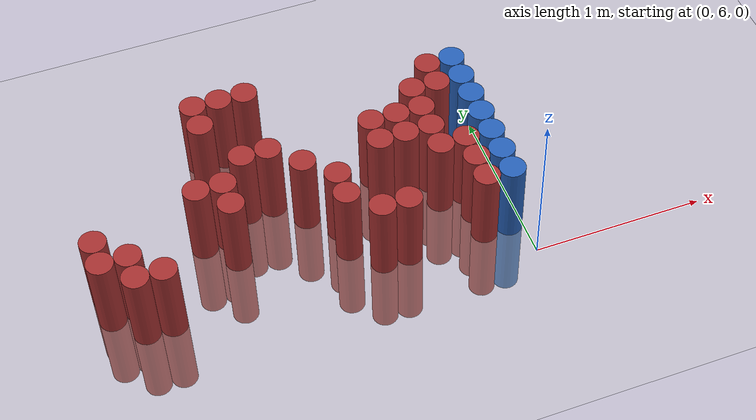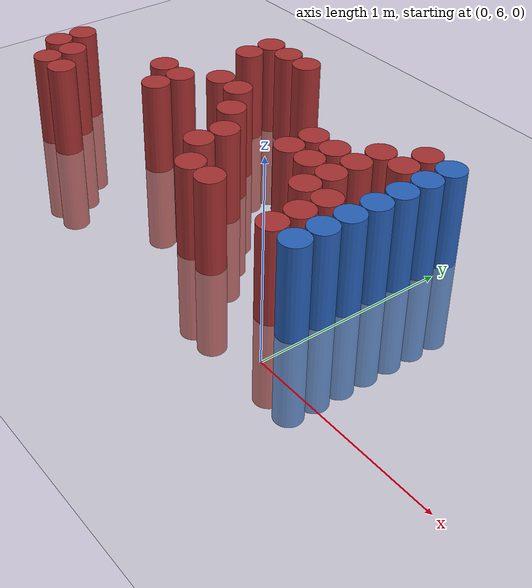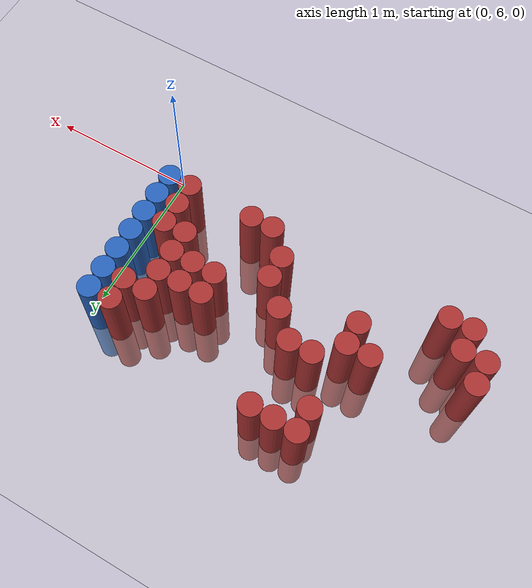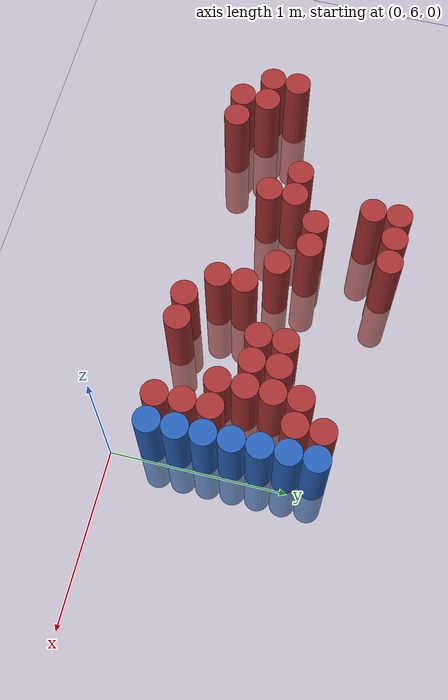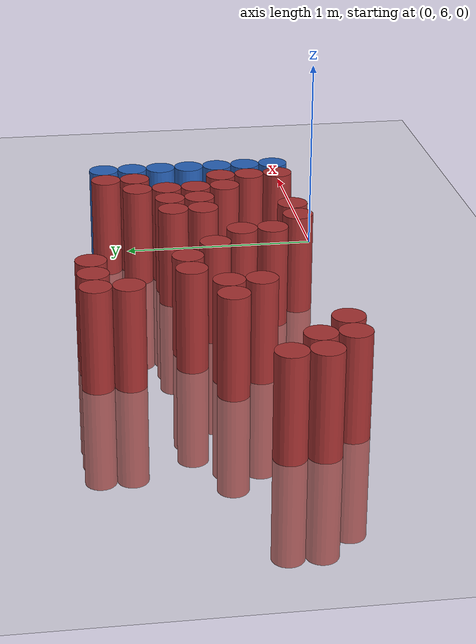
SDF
<sdf version="1.6">
 <world name="default">
  <model name="ground_plane">
   <static>1</static>
   <link name="link">
    <collision name="collision">
     <geometry><plane><normal>0 0 1</normal><size>100 100</size></plane></geometry>
     <surface><friction><ode><mu>100</mu><mu2>50</mu2></ode></friction></surface>
    </collision>
    <visual name="visual">
     <cast_shadows>0</cast_shadows>
     <geometry><plane><normal>0 0 1</normal><size>100 100</size></plane></geometry>
     <material>
      <script><uri>file://media/materials/scripts/gazebo.material</uri><name>Gazebo/Grey</name></script>
     </material>
    </visual>
   </link>
  </model>
  <model name="unit_cylinder_204">
   <static>1</static>
   <pose>-2.325000 6.375000 0.000000 0.000000 0.000000 0.000000</pose>
   <link name="link">
    <inertial>
     <mass>1</mass>
     <inertia><ixx>0.145833</ixx><ixy>0</ixy><ixz>0</ixz><iyy>0.145833</iyy><iyz>0</iyz><izz>0.125</izz></inertia>
    </inertial>
    <collision name="collision">
     <geometry><cylinder><radius>0.075000</radius><length>1</length></cylinder></geometry>
    </collision>
    <visual name="visual">
     <geometry><cylinder><radius>0.075000</radius><length>1</length></cylinder></geometry>
     <material>
      <ambient>0.648000 0.192000 0.192000 1</ambient>
      <diffuse>0.648000 0.192000 0.192000 1</diffuse>
     </material>
     <material>
      <script><name>Gazebo/Grey</name><uri>file://media/materials/scripts/gazebo.material</uri></script>
     </material>
    </visual>
    <sensor name="sensor_contact" type="contact"><contact><collision>collision</collision></contact></sensor>
   </link>
   <plugin filename="gz-sim-touchplugin-system" name="gz::sim::systems::TouchPlugin">
    <target>robot</target>
    <namespace>robot</namespace>
    <time>0.001</time>
    <enabled>true</enabled>
   </plugin>
  </model>
  <model name="unit_cylinder_205">
   <static>1</static>
   <pose>-2.325000 6.525000 0.000000 0.000000 0.000000 0.000000</pose>
   <link name="link">
    <inertial>
     <mass>1</mass>
     <inertia><ixx>0.145833</ixx><ixy>0</ixy><ixz>0</ixz><iyy>0.145833</iyy><iyz>0</iyz><izz>0.125</izz></inertia>
    </inertial>
    <collision name="collision">
     <geometry><cylinder><radius>0.075000</radius><length>1</length></cylinder></geometry>
    </collision>
    <visual name="visual">
     <geometry><cylinder><radius>0.075000</radius><length>1</length></cylinder></geometry>
     <material>
      <ambient>0.648000 0.192000 0.192000 1</ambient>
      <diffuse>0.648000 0.192000 0.192000 1</diffuse>
     </material>
     <material>
      <script><name>Gazebo/Grey</name><uri>file://media/materials/scripts/gazebo.material</uri></script>
     </material>
    </visual>
    <sensor name="sensor_contact" type="contact"><contact><collision>collision</collision></contact></sensor>
   </link>
   <plugin filename="gz-sim-touchplugin-system" name="gz::sim::systems::TouchPlugin">
    <target>robot</target>
    <namespace>robot</namespace>
    <time>0.001</time>
    <enabled>true</enabled>
   </plugin>
  </model>
  <model name="unit_cylinder_207">
   <static>1</static>
   <pose>-2.175000 6.225000 0.000000 0.000000 0.000000 0.000000</pose>
   <link name="link">
    <inertial>
     <mass>1</mass>
     <inertia><ixx>0.145833</ixx><ixy>0</ixy><ixz>0</ixz><iyy>0.145833</iyy><iyz>0</iyz><izz>0.125</izz></inertia>
    </inertial>
    <collision name="collision">
     <geometry><cylinder><radius>0.075000</radius><length>1</length></cylinder></geometry>
    </collision>
    <visual name="visual">
     <geometry><cylinder><radius>0.075000</radius><length>1</length></cylinder></geometry>
     <material>
      <ambient>0.648000 0.192000 0.192000 1</ambient>
      <diffuse>0.648000 0.192000 0.192000 1</diffuse>
     </material>
     <material>
      <script><name>Gazebo/Grey</name><uri>file://media/materials/scripts/gazebo.material</uri></script>
     </material>
    </visual>
    <sensor name="sensor_contact" type="contact"><contact><collision>collision</collision></contact></sensor>
   </link>
   <plugin filename="gz-sim-touchplugin-system" name="gz::sim::systems::TouchPlugin">
    <target>robot</target>
    <namespace>robot</namespace>
    <time>0.001</time>
    <enabled>true</enabled>
   </plugin>
  </model>
  <model name="unit_cylinder_208">
   <static>1</static>
   <pose>-2.175000 6.375000 0.000000 0.000000 0.000000 0.000000</pose>
   <link name="link">
    <inertial>
     <mass>1</mass>
     <inertia><ixx>0.145833</ixx><ixy>0</ixy><ixz>0</ixz><iyy>0.145833</iyy><iyz>0</iyz><izz>0.125</izz></inertia>
    </inertial>
    <collision name="collision">
     <geometry><cylinder><radius>0.075000</radius><length>1</length></cylinder></geometry>
    </collision>
    <visual name="visual">
     <geometry><cylinder><radius>0.075000</radius><length>1</length></cylinder></geometry>
     <material>
      <ambient>0.648000 0.192000 0.192000 1</ambient>
      <diffuse>0.648000 0.192000 0.192000 1</diffuse>
     </material>
     <material>
      <script><name>Gazebo/Grey</name><uri>file://media/materials/scripts/gazebo.material</uri></script>
     </material>
    </visual>
    <sensor name="sensor_contact" type="contact"><contact><collision>collision</collision></contact></sensor>
   </link>
   <plugin filename="gz-sim-touchplugin-system" name="gz::sim::systems::TouchPlugin">
    <target>robot</target>
    <namespace>robot</namespace>
    <time>0.001</time>
    <enabled>true</enabled>
   </plugin>
  </model>
  <model name="unit_cylinder_210">
   <static>1</static>
   <pose>-2.025000 6.225000 0.000000 0.000000 0.000000 0.000000</pose>
   <link name="link">
    <inertial>
     <mass>1</mass>
     <inertia><ixx>0.145833</ixx><ixy>0</ixy><ixz>0</ixz><iyy>0.145833</iyy><iyz>0</iyz><izz>0.125</izz></inertia>
    </inertial>
    <collision name="collision">
     <geometry><cylinder><radius>0.075000</radius><length>1</length></cylinder></geometry>
    </collision>
    <visual name="visual">
     <geometry><cylinder><radius>0.075000</radius><length>1</length></cylinder></geometry>
     <material>
      <ambient>0.648000 0.192000 0.192000 1</ambient>
      <diffuse>0.648000 0.192000 0.192000 1</diffuse>
     </material>
     <material>
      <script><name>Gazebo/Grey</name><uri>file://media/materials/scripts/gazebo.material</uri></script>
     </material>
    </visual>
    <sensor name="sensor_contact" type="contact"><contact><collision>collision</collision></contact></sensor>
   </link>
   <plugin filename="gz-sim-touchplugin-system" name="gz::sim::systems::TouchPlugin">
    <target>robot</target>
    <namespace>robot</namespace>
    <time>0.001</time>
    <enabled>true</enabled>
   </plugin>
  </model>
  <model name="unit_cylinder_216">
   <static>1</static>
   <pose>-1.725000 6.675000 0.000000 0.000000 0.000000 0.000000</pose>
   <link name="link">
    <inertial>
     <mass>1</mass>
     <inertia><ixx>0.145833</ixx><ixy>0</ixy><ixz>0</ixz><iyy>0.145833</iyy><iyz>0</iyz><izz>0.125</izz></inertia>
    </inertial>
    <collision name="collision">
     <geometry><cylinder><radius>0.075000</radius><length>1</length></cylinder></geometry>
    </collision>
    <visual name="visual">
     <geometry><cylinder><radius>0.075000</radius><length>1</length></cylinder></geometry>
     <material>
      <ambient>0.648000 0.192000 0.192000 1</ambient>
      <diffuse>0.648000 0.192000 0.192000 1</diffuse>
     </material>
     <material>
      <script><name>Gazebo/Grey</name><uri>file://media/materials/scripts/gazebo.material</uri></script>
     </material>
    </visual>
    <sensor name="sensor_contact" type="contact"><contact><collision>collision</collision></contact></sensor>
   </link>
   <plugin filename="gz-sim-touchplugin-system" name="gz::sim::systems::TouchPlugin">
    <target>robot</target>
    <namespace>robot</namespace>
    <time>0.001</time>
    <enabled>true</enabled>
   </plugin>
  </model>
  <model name="unit_cylinder_221">
   <static>1</static>
   <pose>-1.575000 6.525000 0.000000 0.000000 0.000000 0.000000</pose>
   <link name="link">
    <inertial>
     <mass>1</mass>
     <inertia><ixx>0.145833</ixx><ixy>0</ixy><ixz>0</ixz><iyy>0.145833</iyy><iyz>0</iyz><izz>0.125</izz></inertia>
    </inertial>
    <collision name="collision">
     <geometry><cylinder><radius>0.075000</radius><length>1</length></cylinder></geometry>
    </collision>
    <visual name="visual">
     <geometry><cylinder><radius>0.075000</radius><length>1</length></cylinder></geometry>
     <material>
      <ambient>0.648000 0.192000 0.192000 1</ambient>
      <diffuse>0.648000 0.192000 0.192000 1</diffuse>
     </material>
     <material>
      <script><name>Gazebo/Grey</name><uri>file://media/materials/scripts/gazebo.material</uri></script>
     </material>
    </visual>
    <sensor name="sensor_contact" type="contact"><contact><collision>collision</collision></contact></sensor>
   </link>
   <plugin filename="gz-sim-touchplugin-system" name="gz::sim::systems::TouchPlugin">
    <target>robot</target>
    <namespace>robot</namespace>
    <time>0.001</time>
    <enabled>true</enabled>
   </plugin>
  </model>
  <model name="unit_cylinder_222">
   <static>1</static>
   <pose>-1.575000 6.675000 0.000000 0.000000 0.000000 0.000000</pose>
   <link name="link">
    <inertial>
     <mass>1</mass>
     <inertia><ixx>0.145833</ixx><ixy>0</ixy><ixz>0</ixz><iyy>0.145833</iyy><iyz>0</iyz><izz>0.125</izz></inertia>
    </inertial>
    <collision name="collision">
     <geometry><cylinder><radius>0.075000</radius><length>1</length></cylinder></geometry>
    </collision>
    <visual name="visual">
     <geometry><cylinder><radius>0.075000</radius><length>1</length></cylinder></geometry>
     <material>
      <ambient>0.648000 0.192000 0.192000 1</ambient>
      <diffuse>0.648000 0.192000 0.192000 1</diffuse>
     </material>
     <material>
      <script><name>Gazebo/Grey</name><uri>file://media/materials/scripts/gazebo.material</uri></script>
     </material>
    </visual>
    <sensor name="sensor_contact" type="contact"><contact><collision>collision</collision></contact></sensor>
   </link>
   <plugin filename="gz-sim-touchplugin-system" name="gz::sim::systems::TouchPlugin">
    <target>robot</target>
    <namespace>robot</namespace>
    <time>0.001</time>
    <enabled>true</enabled>
   </plugin>
  </model>
  <model name="unit_cylinder_223">
   <static>1</static>
   <pose>-1.575000 7.125000 0.000000 0.000000 0.000000 0.000000</pose>
   <link name="link">
    <inertial>
     <mass>1</mass>
     <inertia><ixx>0.145833</ixx><ixy>0</ixy><ixz>0</ixz><iyy>0.145833</iyy><iyz>0</iyz><izz>0.125</izz></inertia>
    </inertial>
    <collision name="collision">
     <geometry><cylinder><radius>0.075000</radius><length>1</length></cylinder></geometry>
    </collision>
    <visual name="visual">
     <geometry><cylinder><radius>0.075000</radius><length>1</length></cylinder></geometry>
     <material>
      <ambient>0.648000 0.192000 0.192000 1</ambient>
      <diffuse>0.648000 0.192000 0.192000 1</diffuse>
     </material>
     <material>
      <script><name>Gazebo/Grey</name><uri>file://media/materials/scripts/gazebo.material</uri></script>
     </material>
    </visual>
    <sensor name="sensor_contact" type="contact"><contact><collision>collision</collision></contact></sensor>
   </link>
   <plugin filename="gz-sim-touchplugin-system" name="gz::sim::systems::TouchPlugin">
    <target>robot</target>
    <namespace>robot</namespace>
    <time>0.001</time>
    <enabled>true</enabled>
   </plugin>
  </model>
  <model name="unit_cylinder_224">
   <static>1</static>
   <pose>-1.575000 7.275000 0.000000 0.000000 0.000000 0.000000</pose>
   <link name="link">
    <inertial>
     <mass>1</mass>
     <inertia><ixx>0.145833</ixx><ixy>0</ixy><ixz>0</ixz><iyy>0.145833</iyy><iyz>0</iyz><izz>0.125</izz></inertia>
    </inertial>
    <collision name="collision">
     <geometry><cylinder><radius>0.075000</radius><length>1</length></cylinder></geometry>
    </collision>
    <visual name="visual">
     <geometry><cylinder><radius>0.075000</radius><length>1</length></cylinder></geometry>
     <material>
      <ambient>0.648000 0.192000 0.192000 1</ambient>
      <diffuse>0.648000 0.192000 0.192000 1</diffuse>
     </material>
     <material>
      <script><name>Gazebo/Grey</name><uri>file://media/materials/scripts/gazebo.material</uri></script>
     </material>
    </visual>
    <sensor name="sensor_contact" type="contact"><contact><collision>collision</collision></contact></sensor>
   </link>
   <plugin filename="gz-sim-touchplugin-system" name="gz::sim::systems::TouchPlugin">
    <target>robot</target>
    <namespace>robot</namespace>
    <time>0.001</time>
    <enabled>true</enabled>
   </plugin>
  </model>
  <model name="unit_cylinder_232">
   <static>1</static>
   <pose>-1.425000 6.825000 0.000000 0.000000 0.000000 0.000000</pose>
   <link name="link">
    <inertial>
     <mass>1</mass>
     <inertia><ixx>0.145833</ixx><ixy>0</ixy><ixz>0</ixz><iyy>0.145833</iyy><iyz>0</iyz><izz>0.125</izz></inertia>
    </inertial>
    <collision name="collision">
     <geometry><cylinder><radius>0.075000</radius><length>1</length></cylinder></geometry>
    </collision>
    <visual name="visual">
     <geometry><cylinder><radius>0.075000</radius><length>1</length></cylinder></geometry>
     <material>
      <ambient>0.648000 0.192000 0.192000 1</ambient>
      <diffuse>0.648000 0.192000 0.192000 1</diffuse>
     </material>
     <material>
      <script><name>Gazebo/Grey</name><uri>file://media/materials/scripts/gazebo.material</uri></script>
     </material>
    </visual>
    <sensor name="sensor_contact" type="contact"><contact><collision>collision</collision></contact></sensor>
   </link>
   <plugin filename="gz-sim-touchplugin-system" name="gz::sim::systems::TouchPlugin">
    <target>robot</target>
    <namespace>robot</namespace>
    <time>0.001</time>
    <enabled>true</enabled>
   </plugin>
  </model>
  <model name="unit_cylinder_233">
   <static>1</static>
   <pose>-1.425000 7.275000 0.000000 0.000000 0.000000 0.000000</pose>
   <link name="link">
    <inertial>
     <mass>1</mass>
     <inertia><ixx>0.145833</ixx><ixy>0</ixy><ixz>0</ixz><iyy>0.145833</iyy><iyz>0</iyz><izz>0.125</izz></inertia>
    </inertial>
    <collision name="collision">
     <geometry><cylinder><radius>0.075000</radius><length>1</length></cylinder></geometry>
    </collision>
    <visual name="visual">
     <geometry><cylinder><radius>0.075000</radius><length>1</length></cylinder></geometry>
     <material>
      <ambient>0.648000 0.192000 0.192000 1</ambient>
      <diffuse>0.648000 0.192000 0.192000 1</diffuse>
     </material>
     <material>
      <script><name>Gazebo/Grey</name><uri>file://media/materials/scripts/gazebo.material</uri></script>
     </material>
    </visual>
    <sensor name="sensor_contact" type="contact"><contact><collision>collision</collision></contact></sensor>
   </link>
   <plugin filename="gz-sim-touchplugin-system" name="gz::sim::systems::TouchPlugin">
    <target>robot</target>
    <namespace>robot</namespace>
    <time>0.001</time>
    <enabled>true</enabled>
   </plugin>
  </model>
  <model name="unit_cylinder_239">
   <static>1</static>
   <pose>-1.275000 6.825000 0.000000 0.000000 0.000000 0.000000</pose>
   <link name="link">
    <inertial>
     <mass>1</mass>
     <inertia><ixx>0.145833</ixx><ixy>0</ixy><ixz>0</ixz><iyy>0.145833</iyy><iyz>0</iyz><izz>0.125</izz></inertia>
    </inertial>
    <collision name="collision">
     <geometry><cylinder><radius>0.075000</radius><length>1</length></cylinder></geometry>
    </collision>
    <visual name="visual">
     <geometry><cylinder><radius>0.075000</radius><length>1</length></cylinder></geometry>
     <material>
      <ambient>0.648000 0.192000 0.192000 1</ambient>
      <diffuse>0.648000 0.192000 0.192000 1</diffuse>
     </material>
     <material>
      <script><name>Gazebo/Grey</name><uri>file://media/materials/scripts/gazebo.material</uri></script>
     </material>
    </visual>
    <sensor name="sensor_contact" type="contact"><contact><collision>collision</collision></contact></sensor>
   </link>
   <plugin filename="gz-sim-touchplugin-system" name="gz::sim::systems::TouchPlugin">
    <target>robot</target>
    <namespace>robot</namespace>
    <time>0.001</time>
    <enabled>true</enabled>
   </plugin>
  </model>
  <model name="unit_cylinder_240">
   <static>1</static>
   <pose>-1.275000 7.275000 0.000000 0.000000 0.000000 0.000000</pose>
   <link name="link">
    <inertial>
     <mass>1</mass>
     <inertia><ixx>0.145833</ixx><ixy>0</ixy><ixz>0</ixz><iyy>0.145833</iyy><iyz>0</iyz><izz>0.125</izz></inertia>
    </inertial>
    <collision name="collision">
     <geometry><cylinder><radius>0.075000</radius><length>1</length></cylinder></geometry>
    </collision>
    <visual name="visual">
     <geometry><cylinder><radius>0.075000</radius><length>1</length></cylinder></geometry>
     <material>
      <ambient>0.648000 0.192000 0.192000 1</ambient>
      <diffuse>0.648000 0.192000 0.192000 1</diffuse>
     </material>
     <material>
      <script><name>Gazebo/Grey</name><uri>file://media/materials/scripts/gazebo.material</uri></script>
     </material>
    </visual>
    <sensor name="sensor_contact" type="contact"><contact><collision>collision</collision></contact></sensor>
   </link>
   <plugin filename="gz-sim-touchplugin-system" name="gz::sim::systems::TouchPlugin">
    <target>robot</target>
    <namespace>robot</namespace>
    <time>0.001</time>
    <enabled>true</enabled>
   </plugin>
  </model>
  <model name="unit_cylinder_248">
   <static>1</static>
   <pose>-1.125000 6.675000 0.000000 0.000000 0.000000 0.000000</pose>
   <link name="link">
    <inertial>
     <mass>1</mass>
     <inertia><ixx>0.145833</ixx><ixy>0</ixy><ixz>0</ixz><iyy>0.145833</iyy><iyz>0</iyz><izz>0.125</izz></inertia>
    </inertial>
    <collision name="collision">
     <geometry><cylinder><radius>0.075000</radius><length>1</length></cylinder></geometry>
    </collision>
    <visual name="visual">
     <geometry><cylinder><radius>0.075000</radius><length>1</length></cylinder></geometry>
     <material>
      <ambient>0.648000 0.192000 0.192000 1</ambient>
      <diffuse>0.648000 0.192000 0.192000 1</diffuse>
     </material>
     <material>
      <script><name>Gazebo/Grey</name><uri>file://media/materials/scripts/gazebo.material</uri></script>
     </material>
    </visual>
    <sensor name="sensor_contact" type="contact"><contact><collision>collision</collision></contact></sensor>
   </link>
   <plugin filename="gz-sim-touchplugin-system" name="gz::sim::systems::TouchPlugin">
    <target>robot</target>
    <namespace>robot</namespace>
    <time>0.001</time>
    <enabled>true</enabled>
   </plugin>
  </model>
  <model name="unit_cylinder_262">
   <static>1</static>
   <pose>-0.975000 6.375000 0.000000 0.000000 0.000000 0.000000</pose>
   <link name="link">
    <inertial>
     <mass>1</mass>
     <inertia><ixx>0.145833</ixx><ixy>0</ixy><ixz>0</ixz><iyy>0.145833</iyy><iyz>0</iyz><izz>0.125</izz></inertia>
    </inertial>
    <collision name="collision">
     <geometry><cylinder><radius>0.075000</radius><length>1</length></cylinder></geometry>
    </collision>
    <visual name="visual">
     <geometry><cylinder><radius>0.075000</radius><length>1</length></cylinder></geometry>
     <material>
      <ambient>0.648000 0.192000 0.192000 1</ambient>
      <diffuse>0.648000 0.192000 0.192000 1</diffuse>
     </material>
     <material>
      <script><name>Gazebo/Grey</name><uri>file://media/materials/scripts/gazebo.material</uri></script>
     </material>
    </visual>
    <sensor name="sensor_contact" type="contact"><contact><collision>collision</collision></contact></sensor>
   </link>
   <plugin filename="gz-sim-touchplugin-system" name="gz::sim::systems::TouchPlugin">
    <target>robot</target>
    <namespace>robot</namespace>
    <time>0.001</time>
    <enabled>true</enabled>
   </plugin>
  </model>
  <model name="unit_cylinder_263">
   <static>1</static>
   <pose>-0.975000 6.525000 0.000000 0.000000 0.000000 0.000000</pose>
   <link name="link">
    <inertial>
     <mass>1</mass>
     <inertia><ixx>0.145833</ixx><ixy>0</ixy><ixz>0</ixz><iyy>0.145833</iyy><iyz>0</iyz><izz>0.125</izz></inertia>
    </inertial>
    <collision name="collision">
     <geometry><cylinder><radius>0.075000</radius><length>1</length></cylinder></geometry>
    </collision>
    <visual name="visual">
     <geometry><cylinder><radius>0.075000</radius><length>1</length></cylinder></geometry>
     <material>
      <ambient>0.648000 0.192000 0.192000 1</ambient>
      <diffuse>0.648000 0.192000 0.192000 1</diffuse>
     </material>
     <material>
      <script><name>Gazebo/Grey</name><uri>file://media/materials/scripts/gazebo.material</uri></script>
     </material>
    </visual>
    <sensor name="sensor_contact" type="contact"><contact><collision>collision</collision></contact></sensor>
   </link>
   <plugin filename="gz-sim-touchplugin-system" name="gz::sim::systems::TouchPlugin">
    <target>robot</target>
    <namespace>robot</namespace>
    <time>0.001</time>
    <enabled>true</enabled>
   </plugin>
  </model>
  <model name="unit_cylinder_274">
   <static>1</static>
   <pose>-0.825000 6.225000 0.000000 0.000000 0.000000 0.000000</pose>
   <link name="link">
    <inertial>
     <mass>1</mass>
     <inertia><ixx>0.145833</ixx><ixy>0</ixy><ixz>0</ixz><iyy>0.145833</iyy><iyz>0</iyz><izz>0.125</izz></inertia>
    </inertial>
    <collision name="collision">
     <geometry><cylinder><radius>0.075000</radius><length>1</length></cylinder></geometry>
    </collision>
    <visual name="visual">
     <geometry><cylinder><radius>0.075000</radius><length>1</length></cylinder></geometry>
     <material>
      <ambient>0.648000 0.192000 0.192000 1</ambient>
      <diffuse>0.648000 0.192000 0.192000 1</diffuse>
     </material>
     <material>
      <script><name>Gazebo/Grey</name><uri>file://media/materials/scripts/gazebo.material</uri></script>
     </material>
    </visual>
    <sensor name="sensor_contact" type="contact"><contact><collision>collision</collision></contact></sensor>
   </link>
   <plugin filename="gz-sim-touchplugin-system" name="gz::sim::systems::TouchPlugin">
    <target>robot</target>
    <namespace>robot</namespace>
    <time>0.001</time>
    <enabled>true</enabled>
   </plugin>
  </model>
  <model name="unit_cylinder_283">
   <static>1</static>
   <pose>-0.675000 6.225000 0.000000 0.000000 0.000000 0.000000</pose>
   <link name="link">
    <inertial>
     <mass>1</mass>
     <inertia><ixx>0.145833</ixx><ixy>0</ixy><ixz>0</ixz><iyy>0.145833</iyy><iyz>0</iyz><izz>0.125</izz></inertia>
    </inertial>
    <collision name="collision">
     <geometry><cylinder><radius>0.075000</radius><length>1</length></cylinder></geometry>
    </collision>
    <visual name="visual">
     <geometry><cylinder><radius>0.075000</radius><length>1</length></cylinder></geometry>
     <material>
      <ambient>0.648000 0.192000 0.192000 1</ambient>
      <diffuse>0.648000 0.192000 0.192000 1</diffuse>
     </material>
     <material>
      <script><name>Gazebo/Grey</name><uri>file://media/materials/scripts/gazebo.material</uri></script>
     </material>
    </visual>
    <sensor name="sensor_contact" type="contact"><contact><collision>collision</collision></contact></sensor>
   </link>
   <plugin filename="gz-sim-touchplugin-system" name="gz::sim::systems::TouchPlugin">
    <target>robot</target>
    <namespace>robot</namespace>
    <time>0.001</time>
    <enabled>true</enabled>
   </plugin>
  </model>
  <model name="unit_cylinder_284">
   <static>1</static>
   <pose>-0.675000 6.675000 0.000000 0.000000 0.000000 0.000000</pose>
   <link name="link">
    <inertial>
     <mass>1</mass>
     <inertia><ixx>0.145833</ixx><ixy>0</ixy><ixz>0</ixz><iyy>0.145833</iyy><iyz>0</iyz><izz>0.125</izz></inertia>
    </inertial>
    <collision name="collision">
     <geometry><cylinder><radius>0.075000</radius><length>1</length></cylinder></geometry>
    </collision>
    <visual name="visual">
     <geometry><cylinder><radius>0.075000</radius><length>1</length></cylinder></geometry>
     <material>
      <ambient>0.648000 0.192000 0.192000 1</ambient>
      <diffuse>0.648000 0.192000 0.192000 1</diffuse>
     </material>
     <material>
      <script><name>Gazebo/Grey</name><uri>file://media/materials/scripts/gazebo.material</uri></script>
     </material>
    </visual>
    <sensor name="sensor_contact" type="contact"><contact><collision>collision</collision></contact></sensor>
   </link>
   <plugin filename="gz-sim-touchplugin-system" name="gz::sim::systems::TouchPlugin">
    <target>robot</target>
    <namespace>robot</namespace>
    <time>0.001</time>
    <enabled>true</enabled>
   </plugin>
  </model>
  <model name="unit_cylinder_285">
   <static>1</static>
   <pose>-0.675000 6.825000 0.000000 0.000000 0.000000 0.000000</pose>
   <link name="link">
    <inertial>
     <mass>1</mass>
     <inertia><ixx>0.145833</ixx><ixy>0</ixy><ixz>0</ixz><iyy>0.145833</iyy><iyz>0</iyz><izz>0.125</izz></inertia>
    </inertial>
    <collision name="collision">
     <geometry><cylinder><radius>0.075000</radius><length>1</length></cylinder></geometry>
    </collision>
    <visual name="visual">
     <geometry><cylinder><radius>0.075000</radius><length>1</length></cylinder></geometry>
     <material>
      <ambient>0.648000 0.192000 0.192000 1</ambient>
      <diffuse>0.648000 0.192000 0.192000 1</diffuse>
     </material>
     <material>
      <script><name>Gazebo/Grey</name><uri>file://media/materials/scripts/gazebo.material</uri></script>
     </material>
    </visual>
    <sensor name="sensor_contact" type="contact"><contact><collision>collision</collision></contact></sensor>
   </link>
   <plugin filename="gz-sim-touchplugin-system" name="gz::sim::systems::TouchPlugin">
    <target>robot</target>
    <namespace>robot</namespace>
    <time>0.001</time>
    <enabled>true</enabled>
   </plugin>
  </model>
  <model name="unit_cylinder_290">
   <static>1</static>
   <pose>-0.525000 6.675000 0.000000 0.000000 0.000000 0.000000</pose>
   <link name="link">
    <inertial>
     <mass>1</mass>
     <inertia><ixx>0.145833</ixx><ixy>0</ixy><ixz>0</ixz><iyy>0.145833</iyy><iyz>0</iyz><izz>0.125</izz></inertia>
    </inertial>
    <collision name="collision">
     <geometry><cylinder><radius>0.075000</radius><length>1</length></cylinder></geometry>
    </collision>
    <visual name="visual">
     <geometry><cylinder><radius>0.075000</radius><length>1</length></cylinder></geometry>
     <material>
      <ambient>0.648000 0.192000 0.192000 1</ambient>
      <diffuse>0.648000 0.192000 0.192000 1</diffuse>
     </material>
     <material>
      <script><name>Gazebo/Grey</name><uri>file://media/materials/scripts/gazebo.material</uri></script>
     </material>
    </visual>
    <sensor name="sensor_contact" type="contact"><contact><collision>collision</collision></contact></sensor>
   </link>
   <plugin filename="gz-sim-touchplugin-system" name="gz::sim::systems::TouchPlugin">
    <target>robot</target>
    <namespace>robot</namespace>
    <time>0.001</time>
    <enabled>true</enabled>
   </plugin>
  </model>
  <model name="unit_cylinder_291">
   <static>1</static>
   <pose>-0.525000 6.825000 0.000000 0.000000 0.000000 0.000000</pose>
   <link name="link">
    <inertial>
     <mass>1</mass>
     <inertia><ixx>0.145833</ixx><ixy>0</ixy><ixz>0</ixz><iyy>0.145833</iyy><iyz>0</iyz><izz>0.125</izz></inertia>
    </inertial>
    <collision name="collision">
     <geometry><cylinder><radius>0.075000</radius><length>1</length></cylinder></geometry>
    </collision>
    <visual name="visual">
     <geometry><cylinder><radius>0.075000</radius><length>1</length></cylinder></geometry>
     <material>
      <ambient>0.648000 0.192000 0.192000 1</ambient>
      <diffuse>0.648000 0.192000 0.192000 1</diffuse>
     </material>
     <material>
      <script><name>Gazebo/Grey</name><uri>file://media/materials/scripts/gazebo.material</uri></script>
     </material>
    </visual>
    <sensor name="sensor_contact" type="contact"><contact><collision>collision</collision></contact></sensor>
   </link>
   <plugin filename="gz-sim-touchplugin-system" name="gz::sim::systems::TouchPlugin">
    <target>robot</target>
    <namespace>robot</namespace>
    <time>0.001</time>
    <enabled>true</enabled>
   </plugin>
  </model>
  <model name="unit_cylinder_292">
   <static>1</static>
   <pose>-0.375000 6.525000 0.000000 0.000000 0.000000 0.000000</pose>
   <link name="link">
    <inertial>
     <mass>1</mass>
     <inertia><ixx>0.145833</ixx><ixy>0</ixy><ixz>0</ixz><iyy>0.145833</iyy><iyz>0</iyz><izz>0.125</izz></inertia>
    </inertial>
    <collision name="collision">
     <geometry><cylinder><radius>0.075000</radius><length>1</length></cylinder></geometry>
    </collision>
    <visual name="visual">
     <geometry><cylinder><radius>0.075000</radius><length>1</length></cylinder></geometry>
     <material>
      <ambient>0.648000 0.192000 0.192000 1</ambient>
      <diffuse>0.648000 0.192000 0.192000 1</diffuse>
     </material>
     <material>
      <script><name>Gazebo/Grey</name><uri>file://media/materials/scripts/gazebo.material</uri></script>
     </material>
    </visual>
    <sensor name="sensor_contact" type="contact"><contact><collision>collision</collision></contact></sensor>
   </link>
   <plugin filename="gz-sim-touchplugin-system" name="gz::sim::systems::TouchPlugin">
    <target>robot</target>
    <namespace>robot</namespace>
    <time>0.001</time>
    <enabled>true</enabled>
   </plugin>
  </model>
  <model name="unit_cylinder_293">
   <static>1</static>
   <pose>-0.375000 6.675000 0.000000 0.000000 0.000000 0.000000</pose>
   <link name="link">
    <inertial>
     <mass>1</mass>
     <inertia><ixx>0.145833</ixx><ixy>0</ixy><ixz>0</ixz><iyy>0.145833</iyy><iyz>0</iyz><izz>0.125</izz></inertia>
    </inertial>
    <collision name="collision">
     <geometry><cylinder><radius>0.075000</radius><length>1</length></cylinder></geometry>
    </collision>
    <visual name="visual">
     <geometry><cylinder><radius>0.075000</radius><length>1</length></cylinder></geometry>
     <material>
      <ambient>0.648000 0.192000 0.192000 1</ambient>
      <diffuse>0.648000 0.192000 0.192000 1</diffuse>
     </material>
     <material>
      <script><name>Gazebo/Grey</name><uri>file://media/materials/scripts/gazebo.material</uri></script>
     </material>
    </visual>
    <sensor name="sensor_contact" type="contact"><contact><collision>collision</collision></contact></sensor>
   </link>
   <plugin filename="gz-sim-touchplugin-system" name="gz::sim::systems::TouchPlugin">
    <target>robot</target>
    <namespace>robot</namespace>
    <time>0.001</time>
    <enabled>true</enabled>
   </plugin>
  </model>
  <model name="unit_cylinder_294">
   <static>1</static>
   <pose>-0.375000 6.825000 0.000000 0.000000 0.000000 0.000000</pose>
   <link name="link">
    <inertial>
     <mass>1</mass>
     <inertia><ixx>0.145833</ixx><ixy>0</ixy><ixz>0</ixz><iyy>0.145833</iyy><iyz>0</iyz><izz>0.125</izz></inertia>
    </inertial>
    <collision name="collision">
     <geometry><cylinder><radius>0.075000</radius><length>1</length></cylinder></geometry>
    </collision>
    <visual name="visual">
     <geometry><cylinder><radius>0.075000</radius><length>1</length></cylinder></geometry>
     <material>
      <ambient>0.648000 0.192000 0.192000 1</ambient>
      <diffuse>0.648000 0.192000 0.192000 1</diffuse>
     </material>
     <material>
      <script><name>Gazebo/Grey</name><uri>file://media/materials/scripts/gazebo.material</uri></script>
     </material>
    </visual>
    <sensor name="sensor_contact" type="contact"><contact><collision>collision</collision></contact></sensor>
   </link>
   <plugin filename="gz-sim-touchplugin-system" name="gz::sim::systems::TouchPlugin">
    <target>robot</target>
    <namespace>robot</namespace>
    <time>0.001</time>
    <enabled>true</enabled>
   </plugin>
  </model>
  <model name="unit_cylinder_295">
   <static>1</static>
   <pose>-0.375000 6.975000 0.000000 0.000000 0.000000 0.000000</pose>
   <link name="link">
    <inertial>
     <mass>1</mass>
     <inertia><ixx>0.145833</ixx><ixy>0</ixy><ixz>0</ixz><iyy>0.145833</iyy><iyz>0</iyz><izz>0.125</izz></inertia>
    </inertial>
    <collision name="collision">
     <geometry><cylinder><radius>0.075000</radius><length>1</length></cylinder></geometry>
    </collision>
    <visual name="visual">
     <geometry><cylinder><radius>0.075000</radius><length>1</length></cylinder></geometry>
     <material>
      <ambient>0.648000 0.192000 0.192000 1</ambient>
      <diffuse>0.648000 0.192000 0.192000 1</diffuse>
     </material>
     <material>
      <script><name>Gazebo/Grey</name><uri>file://media/materials/scripts/gazebo.material</uri></script>
     </material>
    </visual>
    <sensor name="sensor_contact" type="contact"><contact><collision>collision</collision></contact></sensor>
   </link>
   <plugin filename="gz-sim-touchplugin-system" name="gz::sim::systems::TouchPlugin">
    <target>robot</target>
    <namespace>robot</namespace>
    <time>0.001</time>
    <enabled>true</enabled>
   </plugin>
  </model>
  <model name="unit_cylinder_305">
   <static>1</static>
   <pose>-0.225000 6.225000 0.000000 0.000000 0.000000 0.000000</pose>
   <link name="link">
    <inertial>
     <mass>1</mass>
     <inertia><ixx>0.145833</ixx><ixy>0</ixy><ixz>0</ixz><iyy>0.145833</iyy><iyz>0</iyz><izz>0.125</izz></inertia>
    </inertial>
    <collision name="collision">
     <geometry><cylinder><radius>0.075000</radius><length>1</length></cylinder></geometry>
    </collision>
    <visual name="visual">
     <geometry><cylinder><radius>0.075000</radius><length>1</length></cylinder></geometry>
     <material>
      <ambient>0.648000 0.192000 0.192000 1</ambient>
      <diffuse>0.648000 0.192000 0.192000 1</diffuse>
     </material>
     <material>
      <script><name>Gazebo/Grey</name><uri>file://media/materials/scripts/gazebo.material</uri></script>
     </material>
    </visual>
    <sensor name="sensor_contact" type="contact"><contact><collision>collision</collision></contact></sensor>
   </link>
   <plugin filename="gz-sim-touchplugin-system" name="gz::sim::systems::TouchPlugin">
    <target>robot</target>
    <namespace>robot</namespace>
    <time>0.001</time>
    <enabled>true</enabled>
   </plugin>
  </model>
  <model name="unit_cylinder_306">
   <static>1</static>
   <pose>-0.225000 6.375000 0.000000 0.000000 0.000000 0.000000</pose>
   <link name="link">
    <inertial>
     <mass>1</mass>
     <inertia><ixx>0.145833</ixx><ixy>0</ixy><ixz>0</ixz><iyy>0.145833</iyy><iyz>0</iyz><izz>0.125</izz></inertia>
    </inertial>
    <collision name="collision">
     <geometry><cylinder><radius>0.075000</radius><length>1</length></cylinder></geometry>
    </collision>
    <visual name="visual">
     <geometry><cylinder><radius>0.075000</radius><length>1</length></cylinder></geometry>
     <material>
      <ambient>0.648000 0.192000 0.192000 1</ambient>
      <diffuse>0.648000 0.192000 0.192000 1</diffuse>
     </material>
     <material>
      <script><name>Gazebo/Grey</name><uri>file://media/materials/scripts/gazebo.material</uri></script>
     </material>
    </visual>
    <sensor name="sensor_contact" type="contact"><contact><collision>collision</collision></contact></sensor>
   </link>
   <plugin filename="gz-sim-touchplugin-system" name="gz::sim::systems::TouchPlugin">
    <target>robot</target>
    <namespace>robot</namespace>
    <time>0.001</time>
    <enabled>true</enabled>
   </plugin>
  </model>
  <model name="unit_cylinder_307">
   <static>1</static>
   <pose>-0.225000 6.525000 0.000000 0.000000 0.000000 0.000000</pose>
   <link name="link">
    <inertial>
     <mass>1</mass>
     <inertia><ixx>0.145833</ixx><ixy>0</ixy><ixz>0</ixz><iyy>0.145833</iyy><iyz>0</iyz><izz>0.125</izz></inertia>
    </inertial>
    <collision name="collision">
     <geometry><cylinder><radius>0.075000</radius><length>1</length></cylinder></geometry>
    </collision>
    <visual name="visual">
     <geometry><cylinder><radius>0.075000</radius><length>1</length></cylinder></geometry>
     <material>
      <ambient>0.648000 0.192000 0.192000 1</ambient>
      <diffuse>0.648000 0.192000 0.192000 1</diffuse>
     </material>
     <material>
      <script><name>Gazebo/Grey</name><uri>file://media/materials/scripts/gazebo.material</uri></script>
     </material>
    </visual>
    <sensor name="sensor_contact" type="contact"><contact><collision>collision</collision></contact></sensor>
   </link>
   <plugin filename="gz-sim-touchplugin-system" name="gz::sim::systems::TouchPlugin">
    <target>robot</target>
    <namespace>robot</namespace>
    <time>0.001</time>
    <enabled>true</enabled>
   </plugin>
  </model>
  <model name="unit_cylinder_308">
   <static>1</static>
   <pose>-0.225000 6.975000 0.000000 0.000000 0.000000 0.000000</pose>
   <link name="link">
    <inertial>
     <mass>1</mass>
     <inertia><ixx>0.145833</ixx><ixy>0</ixy><ixz>0</ixz><iyy>0.145833</iyy><iyz>0</iyz><izz>0.125</izz></inertia>
    </inertial>
    <collision name="collision">
     <geometry><cylinder><radius>0.075000</radius><length>1</length></cylinder></geometry>
    </collision>
    <visual name="visual">
     <geometry><cylinder><radius>0.075000</radius><length>1</length></cylinder></geometry>
     <material>
      <ambient>0.648000 0.192000 0.192000 1</ambient>
      <diffuse>0.648000 0.192000 0.192000 1</diffuse>
     </material>
     <material>
      <script><name>Gazebo/Grey</name><uri>file://media/materials/scripts/gazebo.material</uri></script>
     </material>
    </visual>
    <sensor name="sensor_contact" type="contact"><contact><collision>collision</collision></contact></sensor>
   </link>
   <plugin filename="gz-sim-touchplugin-system" name="gz::sim::systems::TouchPlugin">
    <target>robot</target>
    <namespace>robot</namespace>
    <time>0.001</time>
    <enabled>true</enabled>
   </plugin>
  </model>
  <model name="unit_cylinder_309">
   <static>1</static>
   <pose>-0.225000 7.125000 0.000000 0.000000 0.000000 0.000000</pose>
   <link name="link">
    <inertial>
     <mass>1</mass>
     <inertia><ixx>0.145833</ixx><ixy>0</ixy><ixz>0</ixz><iyy>0.145833</iyy><iyz>0</iyz><izz>0.125</izz></inertia>
    </inertial>
    <collision name="collision">
     <geometry><cylinder><radius>0.075000</radius><length>1</length></cylinder></geometry>
    </collision>
    <visual name="visual">
     <geometry><cylinder><radius>0.075000</radius><length>1</length></cylinder></geometry>
     <material>
      <ambient>0.648000 0.192000 0.192000 1</ambient>
      <diffuse>0.648000 0.192000 0.192000 1</diffuse>
     </material>
     <material>
      <script><name>Gazebo/Grey</name><uri>file://media/materials/scripts/gazebo.material</uri></script>
     </material>
    </visual>
    <sensor name="sensor_contact" type="contact"><contact><collision>collision</collision></contact></sensor>
   </link>
   <plugin filename="gz-sim-touchplugin-system" name="gz::sim::systems::TouchPlugin">
    <target>robot</target>
    <namespace>robot</namespace>
    <time>0.001</time>
    <enabled>true</enabled>
   </plugin>
  </model>
  <model name="unit_cylinder_327">
   <static>1</static>
   <pose>-0.075000 6.225000 0.000000 0.000000 0.000000 0.000000</pose>
   <link name="link">
    <inertial>
     <mass>1</mass>
     <inertia><ixx>0.145833</ixx><ixy>0</ixy><ixz>0</ixz><iyy>0.145833</iyy><iyz>0</iyz><izz>0.125</izz></inertia>
    </inertial>
    <collision name="collision">
     <geometry><cylinder><radius>0.075000</radius><length>1</length></cylinder></geometry>
    </collision>
    <visual name="visual">
     <geometry><cylinder><radius>0.075000</radius><length>1</length></cylinder></geometry>
     <material>
      <ambient>0.152000 0.379000 0.720000 1</ambient>
      <diffuse>0.152000 0.379000 0.720000 1</diffuse>
     </material>
     <material>
      <script><name>Gazebo/Grey</name><uri>file://media/materials/scripts/gazebo.material</uri></script>
     </material>
    </visual>
    <sensor name="sensor_contact" type="contact"><contact><collision>collision</collision></contact></sensor>
   </link>
   <plugin filename="gz-sim-touchplugin-system" name="gz::sim::systems::TouchPlugin">
    <target>robot</target>
    <namespace>robot</namespace>
    <time>0.001</time>
    <enabled>true</enabled>
   </plugin>
  </model>
  <model name="unit_cylinder_328">
   <static>1</static>
   <pose>-0.075000 6.375000 0.000000 0.000000 0.000000 0.000000</pose>
   <link name="link">
    <inertial>
     <mass>1</mass>
     <inertia><ixx>0.145833</ixx><ixy>0</ixy><ixz>0</ixz><iyy>0.145833</iyy><iyz>0</iyz><izz>0.125</izz></inertia>
    </inertial>
    <collision name="collision">
     <geometry><cylinder><radius>0.075000</radius><length>1</length></cylinder></geometry>
    </collision>
    <visual name="visual">
     <geometry><cylinder><radius>0.075000</radius><length>1</length></cylinder></geometry>
     <material>
      <ambient>0.152000 0.379000 0.720000 1</ambient>
      <diffuse>0.152000 0.379000 0.720000 1</diffuse>
     </material>
     <material>
      <script><name>Gazebo/Grey</name><uri>file://media/materials/scripts/gazebo.material</uri></script>
     </material>
    </visual>
    <sensor name="sensor_contact" type="contact"><contact><collision>collision</collision></contact></sensor>
   </link>
   <plugin filename="gz-sim-touchplugin-system" name="gz::sim::systems::TouchPlugin">
    <target>robot</target>
    <namespace>robot</namespace>
    <time>0.001</time>
    <enabled>true</enabled>
   </plugin>
  </model>
  <model name="unit_cylinder_329">
   <static>1</static>
   <pose>-0.075000 6.525000 0.000000 0.000000 0.000000 0.000000</pose>
   <link name="link">
    <inertial>
     <mass>1</mass>
     <inertia><ixx>0.145833</ixx><ixy>0</ixy><ixz>0</ixz><iyy>0.145833</iyy><iyz>0</iyz><izz>0.125</izz></inertia>
    </inertial>
    <collision name="collision">
     <geometry><cylinder><radius>0.075000</radius><length>1</length></cylinder></geometry>
    </collision>
    <visual name="visual">
     <geometry><cylinder><radius>0.075000</radius><length>1</length></cylinder></geometry>
     <material>
      <ambient>0.152000 0.379000 0.720000 1</ambient>
      <diffuse>0.152000 0.379000 0.720000 1</diffuse>
     </material>
     <material>
      <script><name>Gazebo/Grey</name><uri>file://media/materials/scripts/gazebo.material</uri></script>
     </material>
    </visual>
    <sensor name="sensor_contact" type="contact"><contact><collision>collision</collision></contact></sensor>
   </link>
   <plugin filename="gz-sim-touchplugin-system" name="gz::sim::systems::TouchPlugin">
    <target>robot</target>
    <namespace>robot</namespace>
    <time>0.001</time>
    <enabled>true</enabled>
   </plugin>
  </model>
  <model name="unit_cylinder_330">
   <static>1</static>
   <pose>-0.075000 6.675000 0.000000 0.000000 0.000000 0.000000</pose>
   <link name="link">
    <inertial>
     <mass>1</mass>
     <inertia><ixx>0.145833</ixx><ixy>0</ixy><ixz>0</ixz><iyy>0.145833</iyy><iyz>0</iyz><izz>0.125</izz></inertia>
    </inertial>
    <collision name="collision">
     <geometry><cylinder><radius>0.075000</radius><length>1</length></cylinder></geometry>
    </collision>
    <visual name="visual">
     <geometry><cylinder><radius>0.075000</radius><length>1</length></cylinder></geometry>
     <material>
      <ambient>0.152000 0.379000 0.720000 1</ambient>
      <diffuse>0.152000 0.379000 0.720000 1</diffuse>
     </material>
     <material>
      <script><name>Gazebo/Grey</name><uri>file://media/materials/scripts/gazebo.material</uri></script>
     </material>
    </visual>
    <sensor name="sensor_contact" type="contact"><contact><collision>collision</collision></contact></sensor>
   </link>
   <plugin filename="gz-sim-touchplugin-system" name="gz::sim::systems::TouchPlugin">
    <target>robot</target>
    <namespace>robot</namespace>
    <time>0.001</time>
    <enabled>true</enabled>
   </plugin>
  </model>
  <model name="unit_cylinder_331">
   <static>1</static>
   <pose>-0.075000 6.825000 0.000000 0.000000 0.000000 0.000000</pose>
   <link name="link">
    <inertial>
     <mass>1</mass>
     <inertia><ixx>0.145833</ixx><ixy>0</ixy><ixz>0</ixz><iyy>0.145833</iyy><iyz>0</iyz><izz>0.125</izz></inertia>
    </inertial>
    <collision name="collision">
     <geometry><cylinder><radius>0.075000</radius><length>1</length></cylinder></geometry>
    </collision>
    <visual name="visual">
     <geometry><cylinder><radius>0.075000</radius><length>1</length></cylinder></geometry>
     <material>
      <ambient>0.152000 0.379000 0.720000 1</ambient>
      <diffuse>0.152000 0.379000 0.720000 1</diffuse>
     </material>
     <material>
      <script><name>Gazebo/Grey</name><uri>file://media/materials/scripts/gazebo.material</uri></script>
     </material>
    </visual>
    <sensor name="sensor_contact" type="contact"><contact><collision>collision</collision></contact></sensor>
   </link>
   <plugin filename="gz-sim-touchplugin-system" name="gz::sim::systems::TouchPlugin">
    <target>robot</target>
    <namespace>robot</namespace>
    <time>0.001</time>
    <enabled>true</enabled>
   </plugin>
  </model>
  <model name="unit_cylinder_332">
   <static>1</static>
   <pose>-0.075000 6.975000 0.000000 0.000000 0.000000 0.000000</pose>
   <link name="link">
    <inertial>
     <mass>1</mass>
     <inertia><ixx>0.145833</ixx><ixy>0</ixy><ixz>0</ixz><iyy>0.145833</iyy><iyz>0</iyz><izz>0.125</izz></inertia>
    </inertial>
    <collision name="collision">
     <geometry><cylinder><radius>0.075000</radius><length>1</length></cylinder></geometry>
    </collision>
    <visual name="visual">
     <geometry><cylinder><radius>0.075000</radius><length>1</length></cylinder></geometry>
     <material>
      <ambient>0.152000 0.379000 0.720000 1</ambient>
      <diffuse>0.152000 0.379000 0.720000 1</diffuse>
     </material>
     <material>
      <script><name>Gazebo/Grey</name><uri>file://media/materials/scripts/gazebo.material</uri></script>
     </material>
    </visual>
    <sensor name="sensor_contact" type="contact"><contact><collision>collision</collision></contact></sensor>
   </link>
   <plugin filename="gz-sim-touchplugin-system" name="gz::sim::systems::TouchPlugin">
    <target>robot</target>
    <namespace>robot</namespace>
    <time>0.001</time>
    <enabled>true</enabled>
   </plugin>
  </model>
  <model name="unit_cylinder_333">
   <static>1</static>
   <pose>-0.075000 7.125000 0.000000 0.000000 0.000000 0.000000</pose>
   <link name="link">
    <inertial>
     <mass>1</mass>
     <inertia><ixx>0.145833</ixx><ixy>0</ixy><ixz>0</ixz><iyy>0.145833</iyy><iyz>0</iyz><izz>0.125</izz></inertia>
    </inertial>
    <collision name="collision">
     <geometry><cylinder><radius>0.075000</radius><length>1</length></cylinder></geometry>
    </collision>
    <visual name="visual">
     <geometry><cylinder><radius>0.075000</radius><length>1</length></cylinder></geometry>
     <material>
      <ambient>0.152000 0.379000 0.720000 1</ambient>
      <diffuse>0.152000 0.379000 0.720000 1</diffuse>
     </material>
     <material>
      <script><name>Gazebo/Grey</name><uri>file://media/materials/scripts/gazebo.material</uri></script>
     </material>
    </visual>
    <sensor name="sensor_contact" type="contact"><contact><collision>collision</collision></contact></sensor>
   </link>
   <plugin filename="gz-sim-touchplugin-system" name="gz::sim::systems::TouchPlugin">
    <target>robot</target>
    <namespace>robot</namespace>
    <time>0.001</time>
    <enabled>true</enabled>
   </plugin>
  </model>
 </world>
</sdf>
